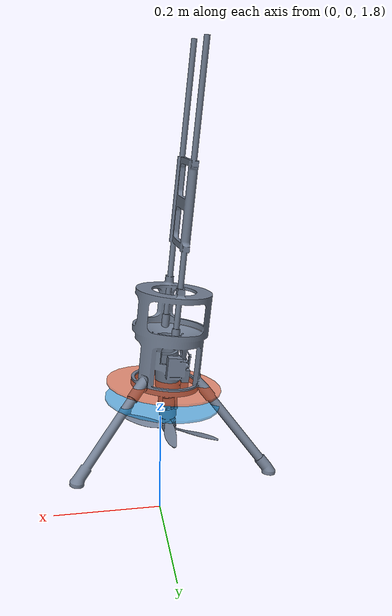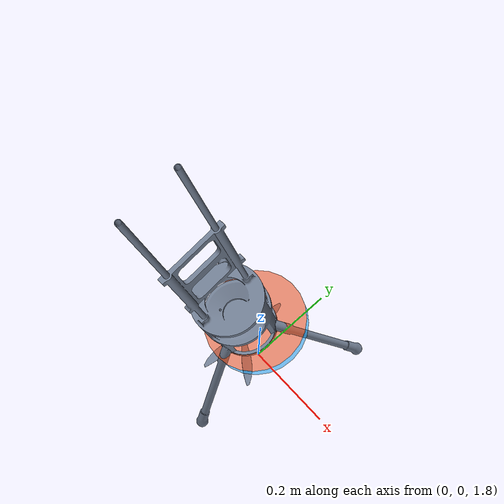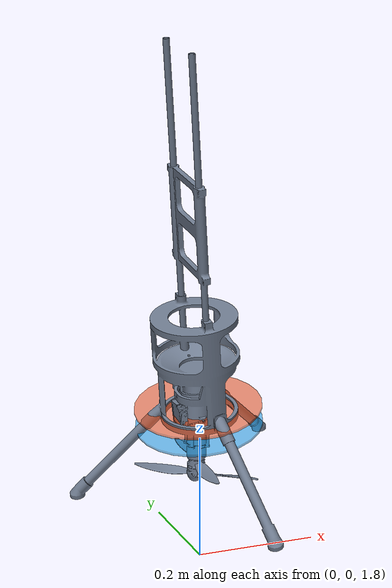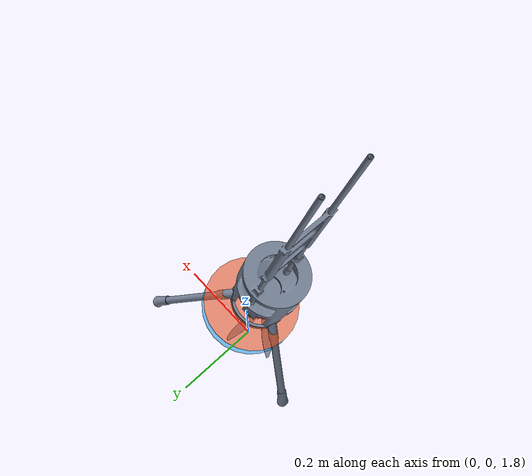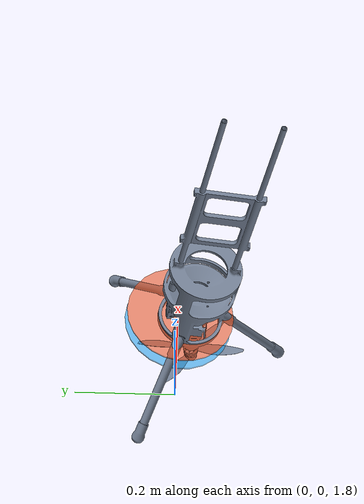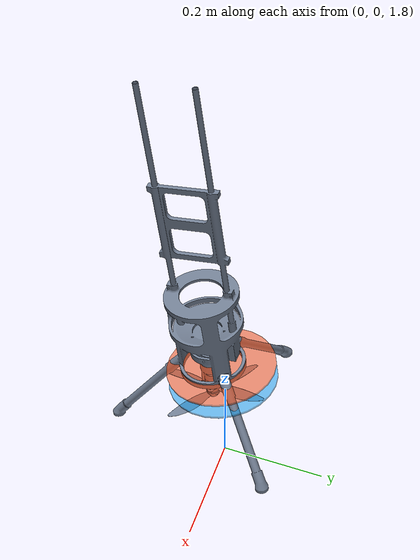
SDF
<?xml version="1.0"?>
<sdf version="1.9">
  <world name="tvc_flight">
    <physics name="1ms" type="ignored">
      <max_step_size>0.001</max_step_size>
      <real_time_factor>1.0</real_time_factor>
    </physics>

    <plugin filename="gz-sim-physics-system"
            name="gz::sim::systems::Physics"/>
    <plugin filename="gz-sim-user-commands-system"
            name="gz::sim::systems::UserCommands"/>
    <plugin filename="gz-sim-scene-broadcaster-system"
            name="gz::sim::systems::SceneBroadcaster"/>
    <plugin filename="gz-sim-imu-system"
            name="gz::sim::systems::Imu"/>
    <plugin filename="gz-sim-sensors-system"
            name="gz::sim::systems::Sensors">
      <render_engine>ogre2</render_engine>
    </plugin>

    <gravity>0 0 -9.81</gravity>

    <light type="directional" name="sun">
      <cast_shadows>true</cast_shadows>
      <pose>0 0 10 0 0 0</pose>
      <diffuse>0.9 0.9 0.9 1</diffuse>
      <specular>0.2 0.2 0.2 1</specular>
      <direction>-0.5 0.2 -0.9</direction>
    </light>

    <model name="ground_plane">
      <static>true</static>
      <link name="link">
        <collision name="collision">
          <geometry><plane><normal>0 0 1</normal><size>100 100</size></plane></geometry>
          <surface>
            <friction><ode><mu>1.0</mu><mu2>1.0</mu2></ode></friction>
          </surface>
        </collision>
        <visual name="visual">
          <geometry><plane><normal>0 0 1</normal><size>100 100</size></plane></geometry>
          <material>
            <ambient>0.3 0.3 0.3 1</ambient>
            <diffuse>0.5 0.5 0.5 1</diffuse>
          </material>
        </visual>
      </link>
    </model>

    <model name="camera_rig">
      <static>true</static>
      <!-- 3.0 m from the 2 m hover point: the vehicle fills ~40% of frame
           height. Farther out and it is a speck; closer and it leaves
           frame during the recovery transient. -->
      <pose>2.2 -2.0 2.15 0 0.0504 2.4038</pose>
      <link name="link">
        <sensor name="chase_cam" type="camera">
          <always_on>1</always_on>
          <update_rate>30</update_rate>
          <topic>/chase_cam/image</topic>
          <camera>
            <horizontal_fov>0.9</horizontal_fov>
            <image><width>960</width><height>640</height><format>R8G8B8</format></image>
            <clip><near>0.1</near><far>120</far></clip>
          </camera>
        </sensor>
      </link>
    </model>

    <include>
      <uri>model://tvc_vehicle</uri>
      <pose>0 0 2.0 0.1745 -0.1222 0</pose>
    </include>
  </world>
</sdf>

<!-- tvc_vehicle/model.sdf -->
<sdf version="1.9">
  <model name="tvc_vehicle">
    <pose>0 0 0 0 0 0</pose>

    <!-- ================= body (whole-vehicle mass properties) ============= -->
    <link name="base_link">
      <pose>0 0 0.2236 0 0 0</pose>
      <inertial>
        <mass>1.2580</mass>
        <inertia>
          <ixx>1.842816e-02</ixx><iyy>1.839302e-02</iyy><izz>1.393713e-03</izz>
          <ixy>-2.187438e-05</ixy><ixz>-3.291339e-04</ixz><iyz>-5.515493e-04</iyz>
        </inertia>
      </inertial>

      <collision name="body_collision">
        <pose>0 0 -0.2236 0 0 0</pose>
        <geometry>
          <cylinder><radius>0.045</radius><length>0.50</length></cylinder>
        </geometry>
      </collision>
      <visual name="body_visual">
        <pose>0 0 -0.2236 0 0 0</pose>
        <geometry>
          <mesh>
            <uri>model://tvc_vehicle/meshes/tvc_vehicle.stl</uri>
            <scale>0.001 0.001 0.001</scale>
          </mesh>
        </geometry>
        <material>
          <ambient>0.25 0.27 0.32 1</ambient>
          <diffuse>0.45 0.5 0.58 1</diffuse>
          <specular>0.3 0.3 0.3 1</specular>
        </material>
      </visual>

      <sensor name="imu_sensor" type="imu">
        <always_on>1</always_on>
        <update_rate>250</update_rate>
        <topic>/tvc_vehicle/imu</topic>
      </sensor>
    </link>

    <!-- Legs: nominal mass, real collision geometry for touchdown. -->
    <link name="legs_link">
      <pose>0 0 -0.0600 0 0 0</pose>
      <inertial>
        <mass>0.0300</mass>
        <inertia>
          <ixx>3.000000e-04</ixx><iyy>3.000000e-04</iyy><izz>5.000000e-04</izz>
          <ixy>0</ixy><ixz>0</ixz><iyz>0</iyz>
        </inertia>
      </inertial>
      <collision name="leg_a">
        <pose>0.14 0 -0.02 0 0.6 0</pose>
        <geometry><cylinder><radius>0.008</radius><length>0.22</length></cylinder></geometry>
      </collision>
      <collision name="leg_b">
        <pose>-0.07 0.121 -0.02 0 0.6 2.094</pose>
        <geometry><cylinder><radius>0.008</radius><length>0.22</length></cylinder></geometry>
      </collision>
      <collision name="leg_c">
        <pose>-0.07 -0.121 -0.02 0 0.6 -2.094</pose>
        <geometry><cylinder><radius>0.008</radius><length>0.22</length></cylinder></geometry>
      </collision>
    </link>
    <joint name="legs_joint" type="fixed">
      <parent>base_link</parent>
      <child>legs_link</child>
    </joint>

    <!-- ================= gimbal ================= -->
    <link name="outer_gimbal">
      <pose>0 0 0.0000 0 0 0</pose>
      <inertial>
        <mass>0.0100</mass>
        <inertia>
          <ixx>1.000000e-05</ixx><iyy>1.000000e-05</iyy><izz>1.500000e-05</izz>
          <ixy>0</ixy><ixz>0</ixz><iyz>0</iyz>
        </inertia>
      </inertial>
    </link>
    <joint name="gimbal_outer_joint" type="revolute">
      <parent>base_link</parent>
      <child>outer_gimbal</child>
      <axis>
        <xyz>1 0 0</xyz>
        <limit>
          <lower>-0.1222</lower>
          <upper>0.1222</upper>
          <effort>5.0</effort>
          <velocity>41.0152</velocity>
        </limit>
        <dynamics><damping>0.01</damping></dynamics>
      </axis>
    </joint>

    <link name="inner_gimbal">
      <pose>0 0 0.0000 0 0 0</pose>
      <inertial>
        <mass>0.0100</mass>
        <inertia>
          <ixx>1.200000e-05</ixx><iyy>1.200000e-05</iyy><izz>1.400000e-05</izz>
          <ixy>0</ixy><ixz>0</ixz><iyz>0</iyz>
        </inertia>
      </inertial>
    </link>
    <joint name="gimbal_inner_joint" type="revolute">
      <parent>outer_gimbal</parent>
      <child>inner_gimbal</child>
      <axis>
        <xyz>0 1 0</xyz>
        <limit>
          <lower>-0.1222</lower>
          <upper>0.1222</upper>
          <effort>5.0</effort>
          <velocity>41.0152</velocity>
        </limit>
        <dynamics><damping>0.01</damping></dynamics>
      </axis>
    </joint>

    <!-- ================= coax rotors ================= -->
    <link name="rotor_a">
      <pose>0 0 0.0300 0 0 0</pose>
      <inertial>
        <mass>0.0100</mass>
        <inertia>
          <ixx>9.000000e-06</ixx><iyy>9.000000e-06</iyy><izz>1.700000e-05</izz>
          <ixy>0</ixy><ixz>0</ixz><iyz>0</iyz>
        </inertia>
      </inertial>
      <visual name="rotor_a_v">
        <geometry><cylinder><radius>0.102</radius><length>0.004</length></cylinder></geometry>
        <material><diffuse>0.1 0.6 0.9 0.6</diffuse></material>
      </visual>
    </link>
    <joint name="rotor_a_joint" type="revolute">
      <parent>inner_gimbal</parent>
      <child>rotor_a</child>
      <axis>
        <xyz>0 0 1</xyz>
        <limit><lower>-1e16</lower><upper>1e16</upper></limit>
        <dynamics><damping>0.004</damping></dynamics>
      </axis>
    </joint>

    <link name="rotor_b">
      <pose>0 0 0.0600 0 0 0</pose>
      <inertial>
        <mass>0.0100</mass>
        <inertia>
          <ixx>9.000000e-06</ixx><iyy>9.000000e-06</iyy><izz>1.700000e-05</izz>
          <ixy>0</ixy><ixz>0</ixz><iyz>0</iyz>
        </inertia>
      </inertial>
      <visual name="rotor_b_v">
        <geometry><cylinder><radius>0.102</radius><length>0.004</length></cylinder></geometry>
        <material><diffuse>0.9 0.3 0.1 0.6</diffuse></material>
      </visual>
    </link>
    <joint name="rotor_b_joint" type="revolute">
      <parent>inner_gimbal</parent>
      <child>rotor_b</child>
      <axis>
        <xyz>0 0 1</xyz>
        <limit><lower>-1e16</lower><upper>1e16</upper></limit>
        <dynamics><damping>0.004</damping></dynamics>
      </axis>
    </joint>

    <!-- ================= plugins (constants from vehicle_params.yaml) ===== -->
    <plugin filename="gz-sim-multicopter-motor-model-system"
            name="gz::sim::systems::MulticopterMotorModel">
      <robotNamespace>tvc_vehicle</robotNamespace>
      <jointName>rotor_a_joint</jointName>
      <linkName>rotor_a</linkName>
      <turningDirection>ccw</turningDirection>
      <timeConstantUp>0.0010</timeConstantUp>
      <timeConstantDown>0.0010</timeConstantDown>
      <maxRotVelocity>1300.0</maxRotVelocity>
      <motorConstant>7.350e-06</motorConstant>
      <momentConstant>0.04</momentConstant>
      <commandSubTopic>command/motor_speed</commandSubTopic>
      <motorNumber>0</motorNumber>
      <rotorDragCoefficient>0.000e+00</rotorDragCoefficient>
      <rollingMomentCoefficient>0.000e+00</rollingMomentCoefficient>
      <motorType>velocity</motorType>
    </plugin>

    <plugin filename="gz-sim-multicopter-motor-model-system"
            name="gz::sim::systems::MulticopterMotorModel">
      <robotNamespace>tvc_vehicle</robotNamespace>
      <jointName>rotor_b_joint</jointName>
      <linkName>rotor_b</linkName>
      <turningDirection>cw</turningDirection>
      <timeConstantUp>0.0010</timeConstantUp>
      <timeConstantDown>0.0010</timeConstantDown>
      <maxRotVelocity>1300.0</maxRotVelocity>
      <motorConstant>7.350e-06</motorConstant>
      <momentConstant>0.04</momentConstant>
      <commandSubTopic>command/motor_speed</commandSubTopic>
      <motorNumber>1</motorNumber>
      <rotorDragCoefficient>0.000e+00</rotorDragCoefficient>
      <rollingMomentCoefficient>0.000e+00</rollingMomentCoefficient>
      <motorType>velocity</motorType>
    </plugin>

    <plugin filename="gz-sim-joint-position-controller-system"
            name="gz::sim::systems::JointPositionController">
      <joint_name>gimbal_inner_joint</joint_name>
      <topic>/tvc_vehicle/gimbal_inner_cmd</topic>
      <p_gain>60.0</p_gain>
      <i_gain>0.0</i_gain>
      <d_gain>1.0</d_gain>
      <cmd_max>5.0</cmd_max>
      <cmd_min>-5.0</cmd_min>
    </plugin>
    <plugin filename="gz-sim-joint-position-controller-system"
            name="gz::sim::systems::JointPositionController">
      <joint_name>gimbal_outer_joint</joint_name>
      <topic>/tvc_vehicle/gimbal_outer_cmd</topic>
      <p_gain>60.0</p_gain>
      <i_gain>0.0</i_gain>
      <d_gain>1.0</d_gain>
      <cmd_max>5.0</cmd_max>
      <cmd_min>-5.0</cmd_min>
    </plugin>

    <plugin filename="gz-sim-odometry-publisher-system"
            name="gz::sim::systems::OdometryPublisher">
      <odom_frame>world</odom_frame>
      <robot_base_frame>base_link</robot_base_frame>
      <odom_publish_frequency>250</odom_publish_frequency>
      <!-- MUST be 3: the default 2D mode drops z/vz and the altitude loop then
           reads z=0 forever and commands full thrust into the ground. -->
      <dimensions>3</dimensions>
    </plugin>
  </model>
</sdf>
